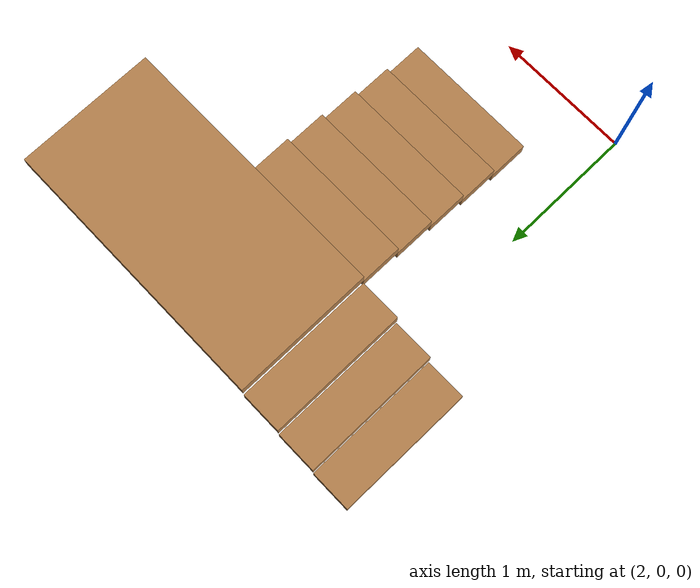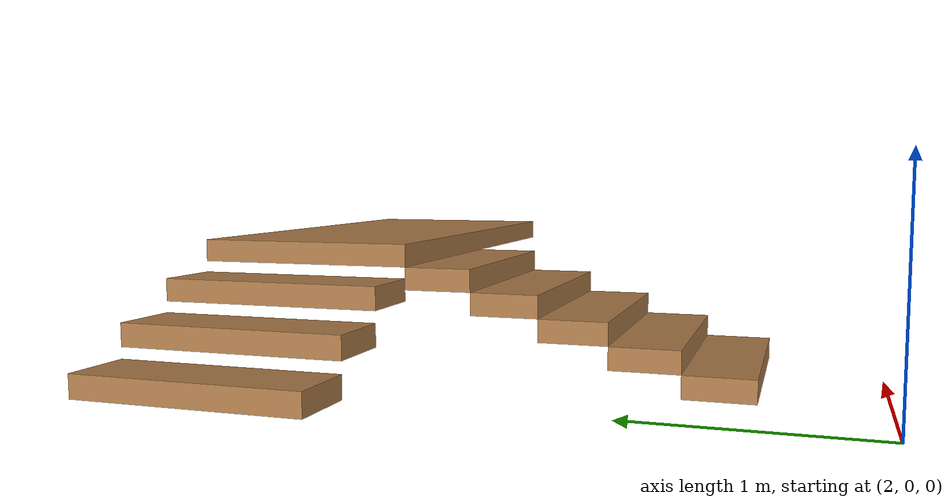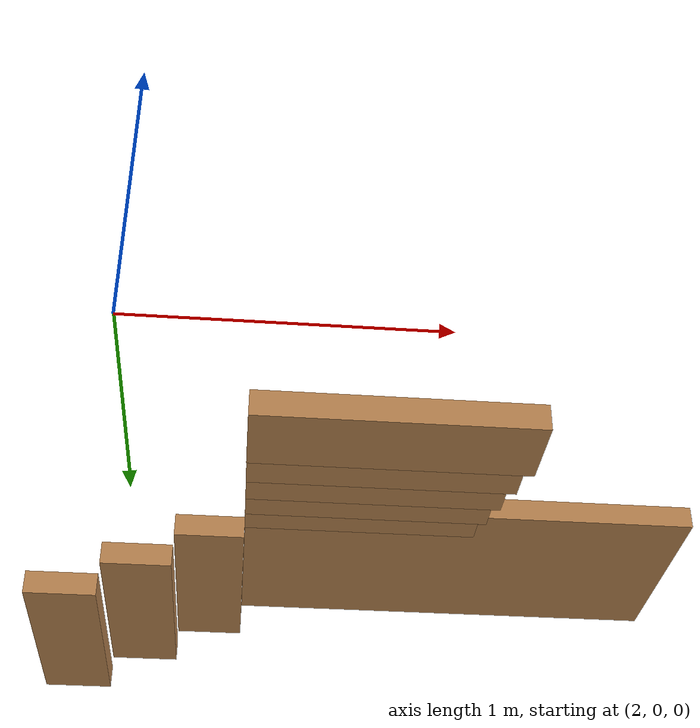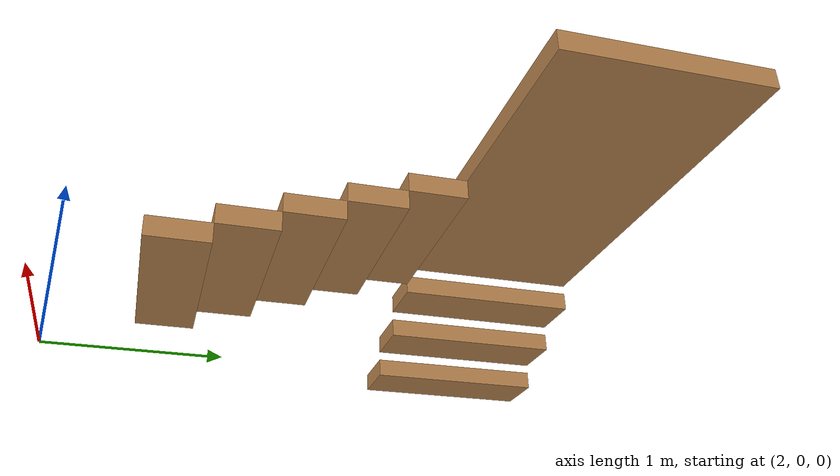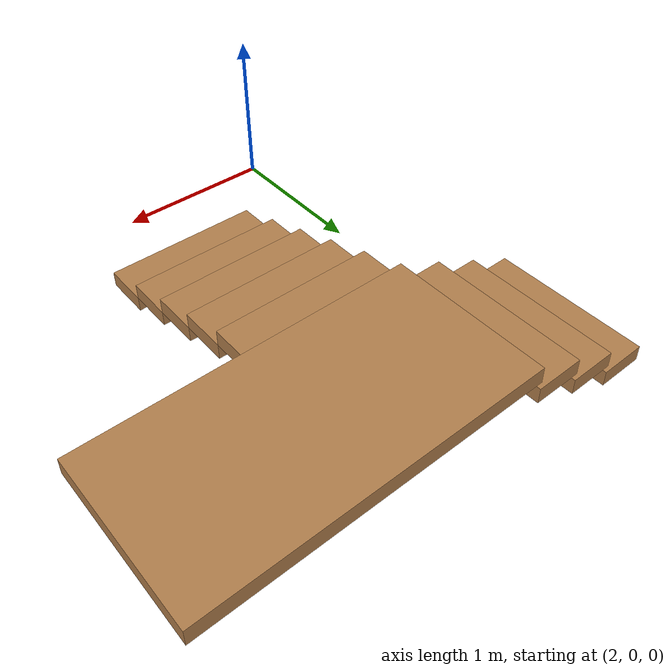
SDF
<?xml version="1.0"?>
<sdf version='1.4'>
  <model name='m_staircases_gerard_bauzil'>
     <link name='Staircases_Gerard_Bauzil'>
        <collision name='Staircases_Gerard_Bauzil_Collision'>
          <geometry>
            <mesh>
              <uri>model://koroibot_stair_cases/meshes/stairmesh_v2.dae</uri>
            </mesh>
          </geometry>
          <pose>0.000000 0.500000 0.05 0.000000 0.000000 0.000000</pose>
          <surface>
            <bounce/>
            <friction>
              <ode/>
            </friction>
            <contact>
              <ode/>
            </contact>
          </surface>
        </collision>
        <visual name='Staircases_Gerard_Bauzil_Visual'>
          <pose>0.000000 0.500000 0.05000 0.000000 0.000000 0.000000</pose>
          <geometry>
            <mesh>
              <uri>model://koroibot_stair_cases/meshes/stairmesh_v2.dae</uri>
            </mesh>
          </geometry>
          <material>
            <script>
              <uri>file://media/materials/scripts/gazebo.material</uri>
              <name>Gazebo/WoodPallet</name>
            </script>
          </material>
          <material>Gazebo/Blue</material>
        </visual>
        <velocity_decay>
          <linear>0.000000</linear>
          <angular>0.000000</angular>
        </velocity_decay>
        <pose>1.5 2.0 0.0 0.0 0.0 0.0</pose>
        <self_collide>0</self_collide>
        <kinematic>0</kinematic>
        <gravity>1</gravity>
      </link>
     <link name='Staircases_Gerard_Bauzil_2'>
        <collision name='Staircases_Gerard_Bauzil_Collision_2'>
          <geometry>
            <mesh>
              <uri>model://koroibot_stair_cases/meshes/stairmesh_v2.dae</uri>
            </mesh>
          </geometry>
          <pose>0.300000 0.500000 0.2 0.000000 0.000000 0.000000</pose>
          <surface>
            <bounce/>
            <friction>
              <ode/>
            </friction>
            <contact>
              <ode/>
            </contact>
          </surface>
        </collision>
        <visual name='Staircases_Gerard_Bauzil_Visual_2'>
          <pose>0.300000 0.500000 0.2000 0.000000 0.000000 0.000000</pose>
          <geometry>
            <mesh>
              <uri>model://koroibot_stair_cases/meshes/stairmesh_v2.dae</uri>
            </mesh>
          </geometry>
          <material>
            <script>
              <uri>file://media/materials/scripts/gazebo.material</uri>
              <name>Gazebo/WoodPallet</name>
            </script>
          </material>
        </visual>
        <velocity_decay>
          <linear>0.000000</linear>
          <angular>0.000000</angular>
        </velocity_decay>
        <pose>1.5 2.0 0.0 0.0 0.0 0.0</pose>
        <self_collide>0</self_collide>
        <kinematic>0</kinematic>
        <gravity>1</gravity>
      </link>
      <link name='Staircases_Gerard_Bauzil_3'>
        <collision name='Staircases_Gerard_Bauzil_Collision_3'>
          <geometry>
            <mesh>
              <uri>model://koroibot_stair_cases/meshes/stairmesh_v2.dae</uri>
            </mesh>
          </geometry>
          <pose>0.600000 0.500000 0.35 0.000000 0.000000 0.000000</pose>
          <surface>
            <bounce/>
            <friction>
              <ode/>
            </friction>
            <contact>
              <ode/>
            </contact>
          </surface>
        </collision>
        <visual name='Staircases_Gerard_Bauzil_Visual_3'>
          <pose>0.600000 0.500000 0.350 0.000000 0.000000 0.000000</pose>
          <geometry>
            <mesh>
              <uri>model://koroibot_stair_cases/meshes/stairmesh_v2.dae</uri>
            </mesh>
          </geometry>
          <material>
            <script>
              <uri>file://media/materials/scripts/gazebo.material</uri>
              <name>Gazebo/WoodPallet</name>
            </script>
          </material>
        </visual>
        <velocity_decay>
          <linear>0.000000</linear>
          <angular>0.000000</angular>
        </velocity_decay>
        <pose>1.5 2.0 0.0 0.0 0.0 0.0</pose>
        <self_collide>0</self_collide>
        <kinematic>0</kinematic>
        <gravity>1</gravity>
      </link>
      <link name='Staircases_Gerard_Bauzil_4'>
        <collision name='Staircases_Gerard_Bauzil_Collision_4'>
          <geometry>
            <mesh>
              <uri>model://koroibot_stair_cases/meshes/stairmesh_v2.dae</uri>
            </mesh>
          </geometry>
          <pose>0.900000 0.500000 0.5 0.000000 0.000000 0.000000</pose>
          <surface>
            <bounce/>
            <friction>
              <ode/>
            </friction>
            <contact>
              <ode/>
            </contact>
          </surface>
        </collision>
        <visual name='Staircases_Gerard_Bauzil_Visual_4'>
          <pose>0.900000 0.500000 0.50 0.000000 0.000000 0.000000</pose>
          <geometry>
            <mesh>
              <uri>model://koroibot_stair_cases/meshes/stairplatform_v2.dae</uri>
            </mesh>
          </geometry>
          <material>
            <script>
              <uri>file://media/materials/scripts/gazebo.material</uri>
              <name>Gazebo/WoodPallet</name>
            </script>
          </material>
        </visual>
        <velocity_decay>
          <linear>0.000000</linear>
          <angular>0.000000</angular>
        </velocity_decay>
        <pose>1.5 2.0 0.0 0.0 0.0 0.0</pose>
        <self_collide>0</self_collide>
        <kinematic>0</kinematic>
        <gravity>1</gravity>
      </link>
      <link name='Staircases_Gerard_Bauzil_5'>
        <collision name='Staircases_Gerard_Bauzil_Collision_5'>
          <geometry>
            <mesh>
              <uri>model://koroibot_stair_cases/meshes/stairmesh_v2.dae</uri>
            </mesh>
          </geometry>
          <pose>1.400000 -0.300000 0.4 0.000000 0.000000 1.570000</pose>
          <surface>
            <bounce/>
            <friction>
              <ode/>
            </friction>
            <contact>
              <ode/>
            </contact>
          </surface>
        </collision>
        <visual name='Staircases_Gerard_Bauzil_Visual_5'>
          <pose>1.400000 -0.300000 0.40 0.000000 0.000000 1.570000</pose>
          <geometry>
            <mesh>
              <uri>model://koroibot_stair_cases/meshes/stairmesh_v2.dae</uri>
            </mesh>
          </geometry>
          <material>
            <script>
              <uri>file://media/materials/scripts/gazebo.material</uri>
              <name>Gazebo/WoodPallet</name>
            </script>
          </material>
        </visual>
        <velocity_decay>
          <linear>0.000000</linear>
          <angular>0.000000</angular>
        </velocity_decay>
        <pose>1.5 2.0 0.0 0.0 0.0 0.0</pose>
        <self_collide>0</self_collide>
        <kinematic>0</kinematic>
        <gravity>1</gravity>
      </link>
      <link name='Staircases_Gerard_Bauzil_6'>
        <collision name='Staircases_Gerard_Bauzil_Collision_6'>
          <geometry>
            <mesh>
              <uri>model://koroibot_stair_cases/meshes/stairmesh_v2.dae</uri>
            </mesh>
          </geometry>
          <pose>1.400000 -0.600000 0.3 0.000000 0.000000 1.570000</pose>
          <surface>
            <bounce/>
            <friction>
              <ode/>
            </friction>
            <contact>
              <ode/>
            </contact>
          </surface>
        </collision>
        <visual name='Staircases_Gerard_Bauzil_Visual_6'>
          <pose>1.400000 -0.600000 0.30 0.000000 0.000000 1.57000</pose>
          <geometry>
            <mesh>
              <uri>model://koroibot_stair_cases/meshes/stairmesh_v2.dae</uri>
            </mesh>
          </geometry>
          <material>
            <script>
              <uri>file://media/materials/scripts/gazebo.material</uri>
              <name>Gazebo/WoodPallet</name>
            </script>
          </material>
        </visual>
        <velocity_decay>
          <linear>0.000000</linear>
          <angular>0.000000</angular>
        </velocity_decay>
        <pose>1.5 2.0 0.0 0.0 0.0 0.0</pose>
        <self_collide>0</self_collide>
        <kinematic>0</kinematic>
        <gravity>1</gravity>
      </link>
      <link name='Staircases_Gerard_Bauzil_7'>
        <collision name='Staircases_Gerard_Bauzil_Collision_7'>
          <geometry>
            <mesh>
              <uri>model://koroibot_stair_cases/meshes/stairmesh_v2.dae</uri>
            </mesh>
          </geometry>
          <pose>1.400000 -0.900000 0.2 0.000000 0.000000 1.570000</pose>
          <surface>
            <bounce/>
            <friction>
              <ode/>
            </friction>
            <contact>
              <ode/>
            </contact>
          </surface>
        </collision>
        <visual name='Staircases_Gerard_Bauzil_Visual_7'>
          <pose>1.400000 -0.900000 0.2 0.000000 0.000000 1.57000</pose>
          <geometry>
            <mesh>
              <uri>model://koroibot_stair_cases/meshes/stairmesh_v2.dae</uri>
            </mesh>
          </geometry>
          <material>
            <script>
              <uri>file://media/materials/scripts/gazebo.material</uri>
              <name>Gazebo/WoodPallet</name>
            </script>
          </material>
        </visual>
        <velocity_decay>
          <linear>0.000000</linear>
          <angular>0.000000</angular>
        </velocity_decay>
        <pose>1.5 2.0 0.0 0.0 0.0 0.0</pose>
        <self_collide>0</self_collide>
        <kinematic>0</kinematic>
        <gravity>1</gravity>
      </link>
      <link name='Staircases_Gerard_Bauzil_8'>
        <collision name='Staircases_Gerard_Bauzil_Collision_8'>
          <geometry>
            <mesh>
              <uri>model://koroibot_stair_cases/meshes/stairmesh_v2.dae</uri>
            </mesh>
          </geometry>
          <pose>1.400000 -1.200000 0.1 0.000000 0.000000 1.570000</pose>
          <surface>
            <bounce/>
            <friction>
              <ode/>
            </friction>
            <contact>
              <ode/>
            </contact>
          </surface>
        </collision>
        <visual name='Staircases_Gerard_Bauzil_Visual_8'>
          <pose>1.400000 -1.200000 0.1 0.000000 0.000000 1.57000</pose>
          <geometry>
            <mesh>
              <uri>model://koroibot_stair_cases/meshes/stairmesh_v2.dae</uri>
            </mesh>
          </geometry>
          <material>
            <script>
              <uri>file://media/materials/scripts/gazebo.material</uri>
              <name>Gazebo/WoodPallet</name>
            </script>
          </material>
        </visual>
        <velocity_decay>
          <linear>0.000000</linear>
          <angular>0.000000</angular>
        </velocity_decay>
        <pose>1.5 2.0 0.0 0.0 0.0 0.0</pose>
        <self_collide>0</self_collide>
        <kinematic>0</kinematic>
        <gravity>1</gravity>
      </link>
      <link name='Staircases_Gerard_Bauzil_9'>
        <collision name='Staircases_Gerard_Bauzil_Collision_9'>
          <geometry>
            <mesh>
              <uri>model://koroibot_stair_cases/meshes/stairmesh_v2.dae</uri>
            </mesh>
          </geometry>
          <pose>1.400000 -1.500000 0.0 0.000000 0.000000 1.570000</pose>
          <surface>
            <bounce/>
            <friction>
              <ode/>
            </friction>
            <contact>
              <ode/>
            </contact>
          </surface>
        </collision>
        <visual name='Staircases_Gerard_Bauzil_Visual_9'>
          <pose>1.400000 -1.500000 0.0 0.000000 0.000000 1.57000</pose>
          <geometry>
            <mesh>
              <uri>model://koroibot_stair_cases/meshes/stairmesh_v2.dae</uri>
            </mesh>
          </geometry>
          <material>
            <script>
              <uri>file://media/materials/scripts/gazebo.material</uri>
              <name>Gazebo/WoodPallet</name>
            </script>
          </material>
        </visual>
        <velocity_decay>
          <linear>0.000000</linear>
          <angular>0.000000</angular>
        </velocity_decay>
        <pose>1.5 2.0 0.0 0.0 0.0 0.0</pose>
        <self_collide>0</self_collide>
        <kinematic>0</kinematic>
        <gravity>1</gravity>
      </link>
      <static>1</static>
    </model>
</sdf>
